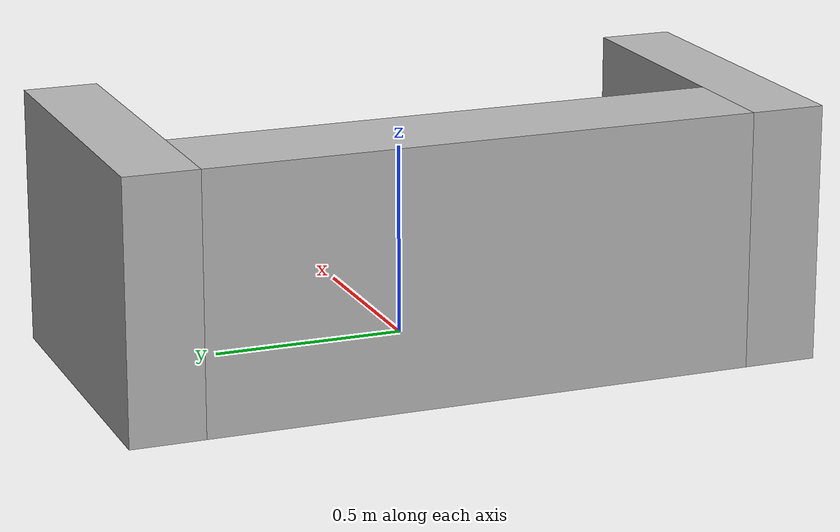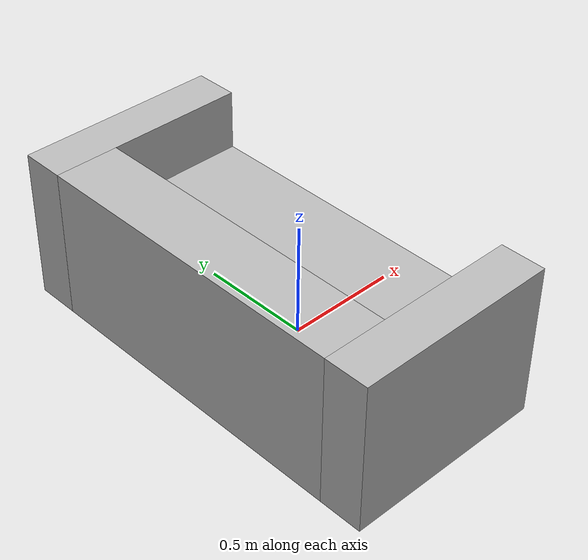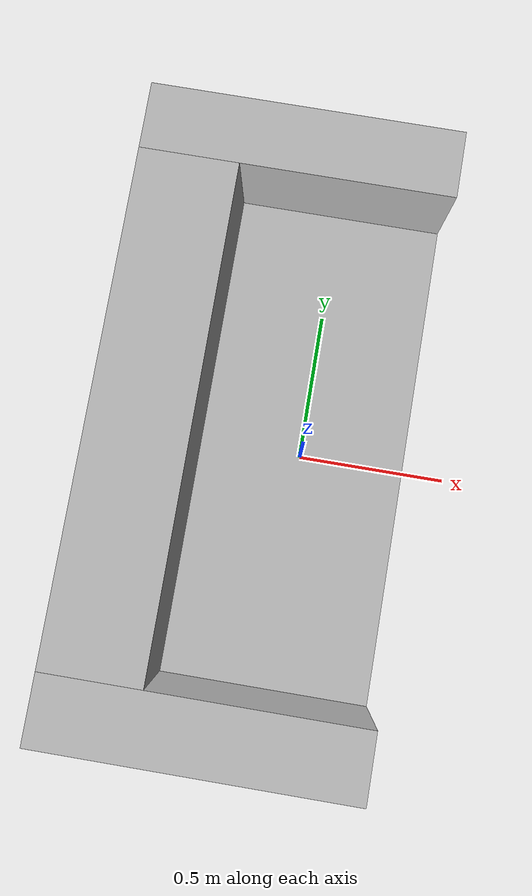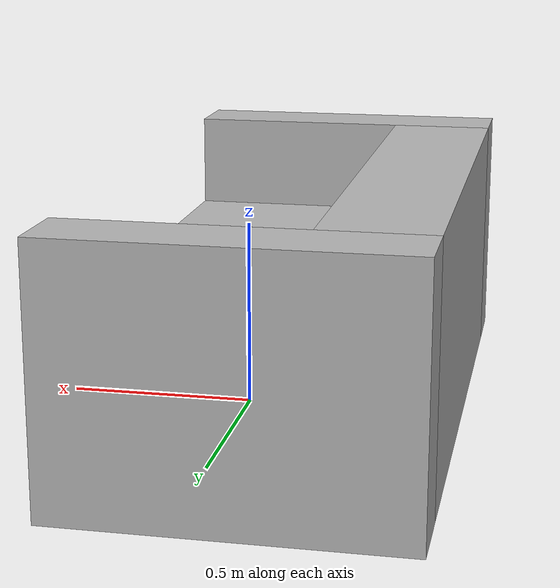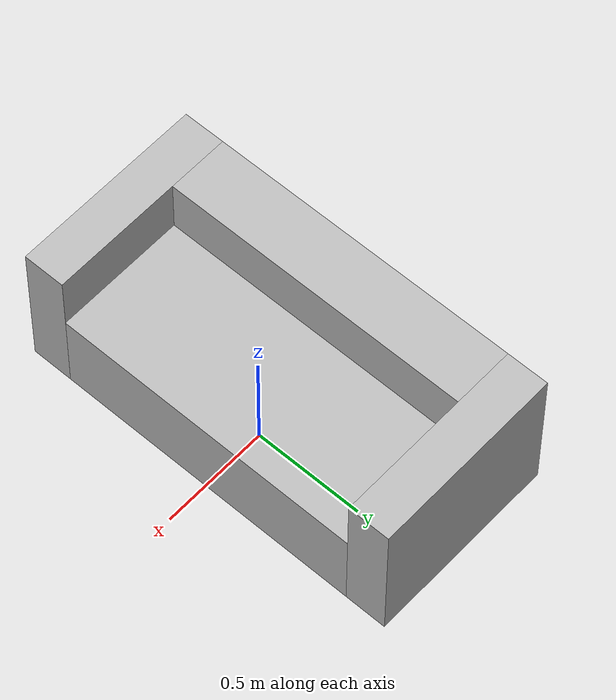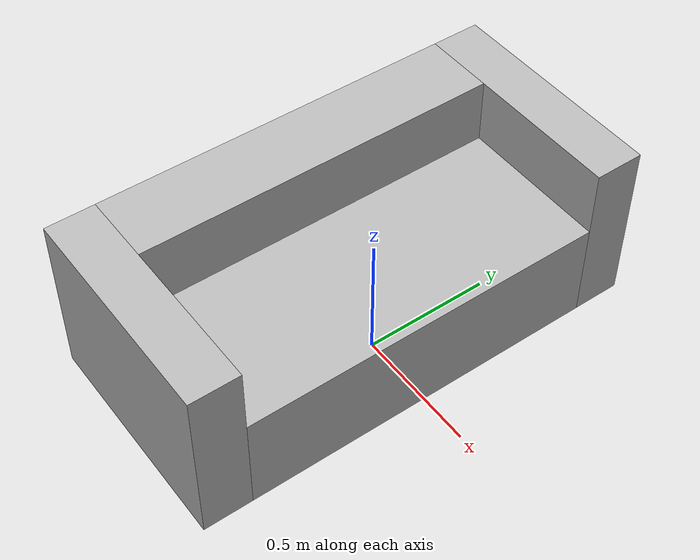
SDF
<?xml version="1.0" ?>
<sdf version="1.6">
  <model name="rwc2023/sofa">
    <static>true</static>
    <link name="base_link">
      <collision name="base_col">
        <geometry>
          <box>
            <size>0.6 1.42 0.4</size>
          </box>
        </geometry>
      </collision>
      <visual name="base_vis">
        <geometry>
          <box>
            <size>0.6 1.42 0.4</size>
          </box>
        </geometry>
      </visual>
      <pose>0.0 0.0 0.2 0 0 0</pose>
    </link>
    <link name="right_armrest_link">
      <collision name="right_armrest_col">
        <geometry>
          <box>
            <size>0.88 0.19 0.66</size>
          </box>
        </geometry>
      </collision>
      <visual name="right_armrest_vis">
        <geometry>
          <box>
            <size>0.88 0.19 0.66</size>
          </box>
        </geometry>
      </visual>
      <pose>-0.14 0.805 0.33 0 0 0</pose>
    </link>
    <link name="left_armrest_link">
      <collision name="left_armrest_col">
        <geometry>
          <box>
            <size>0.88 0.19 0.66</size>
          </box>
        </geometry>
      </collision>
      <visual name="left_armrest_vis">
        <geometry>
          <box>
            <size>0.88 0.19 0.66</size>
          </box>
        </geometry>
      </visual>
      <pose>-0.14 -0.805 0.33 0 0 0</pose>
    </link>
    <link name="back_link">
      <collision name="back_col">
        <geometry>
          <box>
            <size>0.28 1.42 0.66</size>
          </box>
        </geometry>
      </collision>
      <visual name="back_vis">
        <geometry>
          <box>
            <size>0.28 1.42 0.66</size>
          </box>
        </geometry>
      </visual>
      <pose>-0.44 0 0.33 0 0 0</pose>
    </link>
    <link name="on_top_of_sofa_left">
      <virtual_volume name="on_top_of_vv">
        <geometry>
          <box>
            <size>0.53 0.68 0.25</size>
          </box>
        </geometry>
        <pose>0.0 0.35 0.545 0 0 0</pose>
      </virtual_volume>
    </link>
    <link name="on_top_of_sofa_right">
      <virtual_volume name="on_top_of_vv">
        <geometry>
          <box>
            <size>0.53 0.68 0.25</size>
          </box>
        </geometry>
        <pose>0.0 -0.35 0.545 0 0 0</pose>
      </virtual_volume>
    </link>

    <link name="in_front_of">
      <virtual_volume name="in_front_of_vv">
        <geometry>
          <box>
            <size>0.2 1.22 0.01</size>
          </box>
        </geometry>
        <pose>0.8 0.0 0.005 0 0 0</pose>
      </virtual_volume>
    </link>
  </model>
</sdf>
